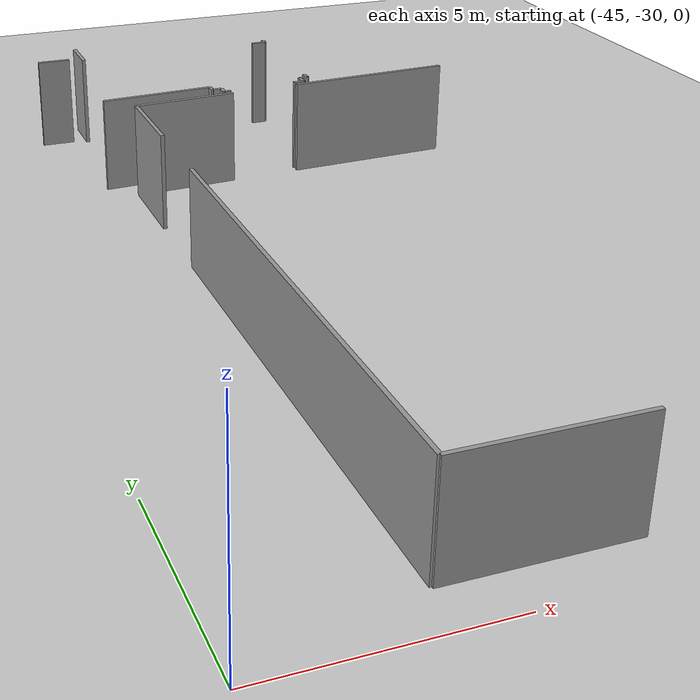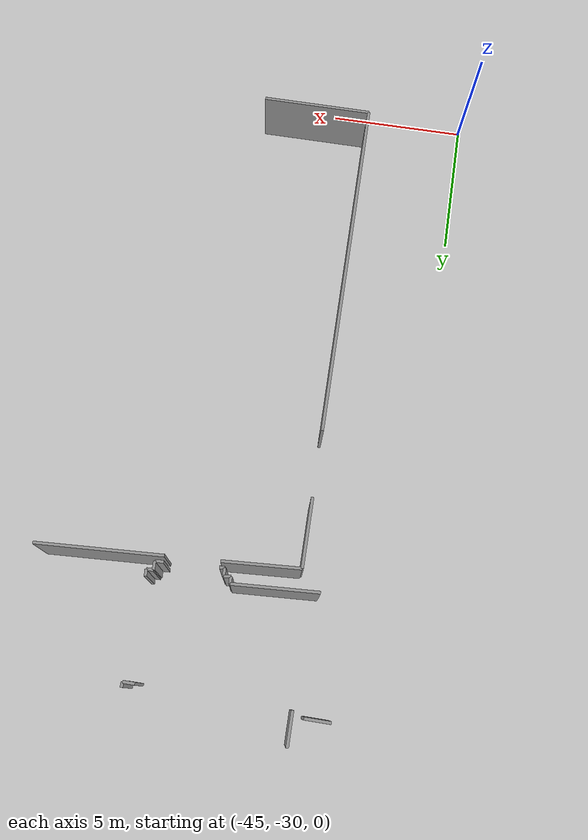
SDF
<sdf version="1.6">
 <world name="default">
  <model name="ground_plane">
   <static>1</static>
   <link name="link">
    <collision name="collision">
     <geometry><plane><normal>0 0 1</normal><size>100 100</size></plane></geometry>
     <surface><friction><ode><mu>100</mu><mu2>50</mu2></ode></friction></surface>
    </collision>
    <visual name="visual">
     <cast_shadows>0</cast_shadows>
     <geometry><plane><normal>0 0 1</normal><size>100 100</size></plane></geometry>
     <material>
      <script><uri>file://media/materials/scripts/gazebo.material</uri><name>Gazebo/Grey</name></script>
     </material>
    </visual>
   </link>
  </model>
  <model name="50041169">
   <static>1</static>
   <link name="Wall_35">
    <collision name="Wall_35_Collision">
     <geometry><box><size>0.89307249946 0.1 2.5</size></box></geometry>
     <pose>0.44653624973 0 1.25 0 0 0</pose>
    </collision>
    <visual name="Wall_35_Visual">
     <pose>0.44653624973 0 1.25 0 0 0</pose>
     <geometry><box><size>0.89307249946 0.1 2.5</size></box></geometry>
     <material>
      <script><uri>file://media/materials/scripts/gazebo.material</uri><name>Gazebo/Grey</name></script>
      <ambient>1 1 1 1</ambient>
     </material>
    </visual>
    <pose>29.5066837622 -35.5635179567 0 0 0 3.14159265359</pose>
   </link>
   <link name="Wall_119">
    <collision name="Wall_119_Collision">
     <geometry><box><size>0.240132082163 0.1 2.5</size></box></geometry>
     <pose>0.120066041081 0 1.25 0 0 0</pose>
    </collision>
    <visual name="Wall_119_Visual">
     <pose>0.120066041081 0 1.25 0 0 0</pose>
     <geometry><box><size>0.240132082163 0.1 2.5</size></box></geometry>
     <material>
      <script><uri>file://media/materials/scripts/gazebo.material</uri><name>Gazebo/Grey</name></script>
      <ambient>1 1 1 1</ambient>
     </material>
    </visual>
    <pose>35.3555152146 -39.1987736915 0 0 0 -1.51843554915</pose>
   </link>
   <link name="Wall_120">
    <collision name="Wall_120_Collision">
     <geometry><box><size>0.239886967605 0.1 2.5</size></box></geometry>
     <pose>0.119943483803 0 1.25 0 0 0</pose>
    </collision>
    <visual name="Wall_120_Visual">
     <pose>0.119943483803 0 1.25 0 0 0</pose>
     <geometry><box><size>0.239886967605 0.1 2.5</size></box></geometry>
     <material>
      <script><uri>file://media/materials/scripts/gazebo.material</uri><name>Gazebo/Grey</name></script>
      <ambient>1 1 1 1</ambient>
     </material>
    </visual>
    <pose>35.3680829726 -39.4385766697 0 0 0 -3.11512980125</pose>
   </link>
   <link name="Wall_121">
    <collision name="Wall_121_Collision">
     <geometry><box><size>0.300746377257 0.1 2.5</size></box></geometry>
     <pose>0.150373188628 0 1.25 0 0 0</pose>
    </collision>
    <visual name="Wall_121_Visual">
     <pose>0.150373188628 0 1.25 0 0 0</pose>
     <geometry><box><size>0.300746377257 0.1 2.5</size></box></geometry>
     <material>
      <script><uri>file://media/materials/scripts/gazebo.material</uri><name>Gazebo/Grey</name></script>
      <ambient>1 1 1 1</ambient>
     </material>
    </visual>
    <pose>35.1282799944 -39.4449240222 0 0 0 -1.52899559492</pose>
   </link>
   <link name="Wall_122">
    <collision name="Wall_122_Collision">
     <geometry><box><size>0.300943506173 0.1 2.5</size></box></geometry>
     <pose>0.150471753086 0 1.25 0 0 0</pose>
    </collision>
    <visual name="Wall_122_Visual">
     <pose>0.150471753086 0 1.25 0 0 0</pose>
     <geometry><box><size>0.300943506173 0.1 2.5</size></box></geometry>
     <material>
      <script><uri>file://media/materials/scripts/gazebo.material</uri><name>Gazebo/Grey</name></script>
      <ambient>1 1 1 1</ambient>
     </material>
    </visual>
    <pose>35.1408477524 -39.7454076905 0 0 0 -3.0863047387</pose>
   </link>
   <link name="Wall_123">
    <collision name="Wall_123_Collision">
     <geometry><box><size>0.175779496808 0.1 2.5</size></box></geometry>
     <pose>0.0878897484039 0 1.25 0 0 0</pose>
    </collision>
    <visual name="Wall_123_Visual">
     <pose>0.0878897484039 0 1.25 0 0 0</pose>
     <geometry><box><size>0.175779496808 0.1 2.5</size></box></geometry>
     <material>
      <script><uri>file://media/materials/scripts/gazebo.material</uri><name>Gazebo/Grey</name></script>
      <ambient>1 1 1 1</ambient>
     </material>
    </visual>
    <pose>32.9700531908 -39.8746397877 0 0 0 -3.11053328078</pose>
   </link>
   <link name="Wall_124">
    <collision name="Wall_124_Collision">
     <geometry><box><size>0.274386879878 0.1 2.5</size></box></geometry>
     <pose>0.137193439939 0 1.25 0 0 0</pose>
    </collision>
    <visual name="Wall_124_Visual">
     <pose>0.137193439939 0 1.25 0 0 0</pose>
     <geometry><box><size>0.274386879878 0.1 2.5</size></box></geometry>
     <material>
      <script><uri>file://media/materials/scripts/gazebo.material</uri><name>Gazebo/Grey</name></script>
      <ambient>1 1 1 1</ambient>
     </material>
    </visual>
    <pose>32.7943584731 -39.8800985109 0 0 0 1.59069189655</pose>
   </link>
   <link name="Wall_125">
    <collision name="Wall_125_Collision">
     <geometry><box><size>0.243005305374 0.1 2.5</size></box></geometry>
     <pose>0.121502652687 0 1.25 0 0 0</pose>
    </collision>
    <visual name="Wall_125_Visual">
     <pose>0.121502652687 0 1.25 0 0 0</pose>
     <geometry><box><size>0.243005305374 0.1 2.5</size></box></geometry>
     <material>
      <script><uri>file://media/materials/scripts/gazebo.material</uri><name>Gazebo/Grey</name></script>
      <ambient>1 1 1 1</ambient>
     </material>
    </visual>
    <pose>32.7888997499 -39.605765935 0 0 0 -3.02851245343</pose>
   </link>
   <link name="Wall_126">
    <collision name="Wall_126_Collision">
     <geometry><box><size>0.241705750441 0.1 2.5</size></box></geometry>
     <pose>0.120852875221 0 1.25 0 0 0</pose>
    </collision>
    <visual name="Wall_126_Visual">
     <pose>0.120852875221 0 1.25 0 0 0</pose>
     <geometry><box><size>0.241705750441 0.1 2.5</size></box></geometry>
     <material>
      <script><uri>file://media/materials/scripts/gazebo.material</uri><name>Gazebo/Grey</name></script>
      <ambient>1 1 1 1</ambient>
     </material>
    </visual>
    <pose>32.5474464601 -39.6331864979 0 0 0 1.61650579065</pose>
   </link>
   <link name="Wall_127">
    <collision name="Wall_127_Collision">
     <geometry><box><size>3.01294578513 0.1 2.5</size></box></geometry>
     <pose>1.50647289256 0 1.25 0 0 0</pose>
    </collision>
    <visual name="Wall_127_Visual">
     <pose>1.50647289256 0 1.25 0 0 0</pose>
     <geometry><box><size>3.01294578513 0.1 2.5</size></box></geometry>
     <material>
      <script><uri>file://media/materials/scripts/gazebo.material</uri><name>Gazebo/Grey</name></script>
      <ambient>1 1 1 1</ambient>
     </material>
    </visual>
    <pose>32.5364020667 -39.3917332081 0 0 0 -3.08147355411</pose>
   </link>
   <link name="Wall_130">
    <collision name="Wall_130_Collision">
     <geometry><box><size>0.406484455334 0.1 2.5</size></box></geometry>
     <pose>0.203242227667 0 1.25 0 0 0</pose>
    </collision>
    <visual name="Wall_130_Visual">
     <pose>0.203242227667 0 1.25 0 0 0</pose>
     <geometry><box><size>0.406484455334 0.1 2.5</size></box></geometry>
     <material>
      <script><uri>file://media/materials/scripts/gazebo.material</uri><name>Gazebo/Grey</name></script>
      <ambient>1 1 1 1</ambient>
     </material>
    </visual>
    <pose>35.0371320122 -35.7722189075 0 0 0 0.0</pose>
   </link>
   <link name="Wall_131">
    <collision name="Wall_131_Collision">
     <geometry><box><size>0.1811534409 0.1 2.5</size></box></geometry>
     <pose>0.0905767204499 0 1.25 0 0 0</pose>
    </collision>
    <visual name="Wall_131_Visual">
     <pose>0.0905767204499 0 1.25 0 0 0</pose>
     <geometry><box><size>0.1811534409 0.1 2.5</size></box></geometry>
     <material>
      <script><uri>file://media/materials/scripts/gazebo.material</uri><name>Gazebo/Grey</name></script>
      <ambient>1 1 1 1</ambient>
     </material>
    </visual>
    <pose>35.4436164676 -35.7722189075 0 0 0 1.57079632679</pose>
   </link>
   <link name="Wall_161">
    <collision name="Wall_161_Collision">
     <geometry><box><size>1.15597984081 0.1 2.5</size></box></geometry>
     <pose>0.577989920404 0 1.25 0 0 0</pose>
    </collision>
    <visual name="Wall_161_Visual">
     <pose>0.577989920404 0 1.25 0 0 0</pose>
     <geometry><box><size>1.15597984081 0.1 2.5</size></box></geometry>
     <material>
      <script><uri>file://media/materials/scripts/gazebo.material</uri><name>Gazebo/Grey</name></script>
      <ambient>1 1 1 1</ambient>
     </material>
    </visual>
    <pose>29.896665101 -35.7563505262 0 0 0 1.57079632679</pose>
   </link>
   <link name="Wall_178">
    <collision name="Wall_178_Collision">
     <geometry><box><size>3.99933987534 0.1 2.5</size></box></geometry>
     <pose>1.99966993767 0 1.25 0 0 0</pose>
    </collision>
    <visual name="Wall_178_Visual">
     <pose>1.99966993767 0 1.25 0 0 0</pose>
     <geometry><box><size>3.99933987534 0.1 2.5</size></box></geometry>
     <material>
      <script><uri>file://media/materials/scripts/gazebo.material</uri><name>Gazebo/Grey</name></script>
      <ambient>1 1 1 1</ambient>
     </material>
    </visual>
    <pose>34.2459979942 -57.7982938316 0 0 0 3.14159265359</pose>
   </link>
   <link name="Wall_179">
    <collision name="Wall_179_Collision">
     <geometry><box><size>12.7308849479 0.1 2.5</size></box></geometry>
     <pose>6.36544247394 0 1.25 0 0 0</pose>
    </collision>
    <visual name="Wall_179_Visual">
     <pose>6.36544247394 0 1.25 0 0 0</pose>
     <geometry><box><size>12.7308849479 0.1 2.5</size></box></geometry>
     <material>
      <script><uri>file://media/materials/scripts/gazebo.material</uri><name>Gazebo/Grey</name></script>
      <ambient>1 1 1 1</ambient>
     </material>
    </visual>
    <pose>30.2466581189 -57.7982938316 0 0 0 1.57079632679</pose>
   </link>
   <link name="Wall_180">
    <collision name="Wall_180_Collision">
     <geometry><box><size>2.4381450497 0.1 2.5</size></box></geometry>
     <pose>1.21907252485 0 1.25 0 0 0</pose>
    </collision>
    <visual name="Wall_180_Visual">
     <pose>1.21907252485 0 1.25 0 0 0</pose>
     <geometry><box><size>2.4381450497 0.1 2.5</size></box></geometry>
     <material>
      <script><uri>file://media/materials/scripts/gazebo.material</uri><name>Gazebo/Grey</name></script>
      <ambient>1 1 1 1</ambient>
     </material>
    </visual>
    <pose>30.2466581189 -42.6964188237 0 0 0 1.57079632679</pose>
   </link>
   <link name="Wall_181">
    <collision name="Wall_181_Collision">
     <geometry><box><size>2.72881948621 0.1 2.5</size></box></geometry>
     <pose>1.3644097431 0 1.25 0 0 0</pose>
    </collision>
    <visual name="Wall_181_Visual">
     <pose>1.3644097431 0 1.25 0 0 0</pose>
     <geometry><box><size>2.72881948621 0.1 2.5</size></box></geometry>
     <material>
      <script><uri>file://media/materials/scripts/gazebo.material</uri><name>Gazebo/Grey</name></script>
      <ambient>1 1 1 1</ambient>
     </material>
    </visual>
    <pose>30.2466581189 -40.258273774 0 0 0 0.0645226832478</pose>
   </link>
   <link name="Wall_182">
    <collision name="Wall_182_Collision">
     <geometry><box><size>4.45677940724 0.1 2.5</size></box></geometry>
     <pose>2.22838970362 0 1.25 0 0 0</pose>
    </collision>
    <visual name="Wall_182_Visual">
     <pose>2.22838970362 0 1.25 0 0 0</pose>
     <geometry><box><size>4.45677940724 0.1 2.5</size></box></geometry>
     <material>
      <script><uri>file://media/materials/scripts/gazebo.material</uri><name>Gazebo/Grey</name></script>
      <ambient>1 1 1 1</ambient>
     </material>
    </visual>
    <pose>34.8506467952 -39.9688344991 0 0 0 0.0566850929237</pose>
   </link>
   <pose>-71.5 28.8982938316 0 0 0 0</pose>
  </model>
 </world>
</sdf>
